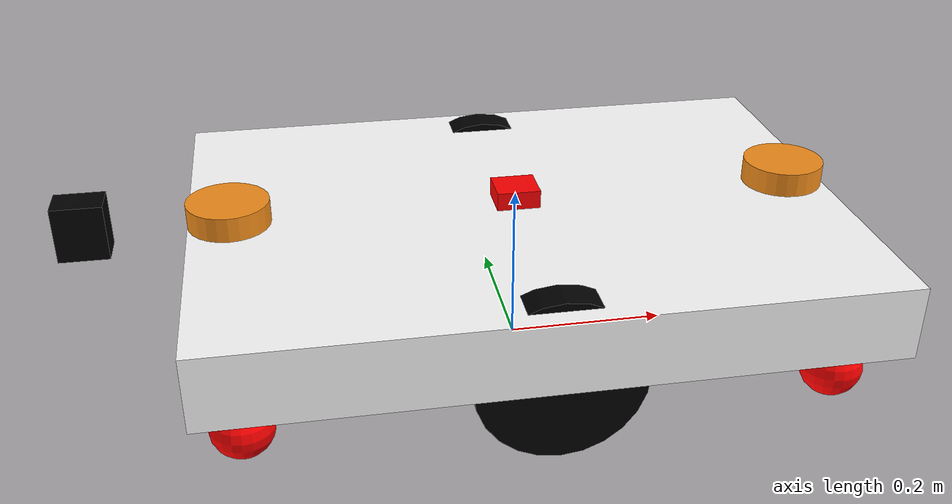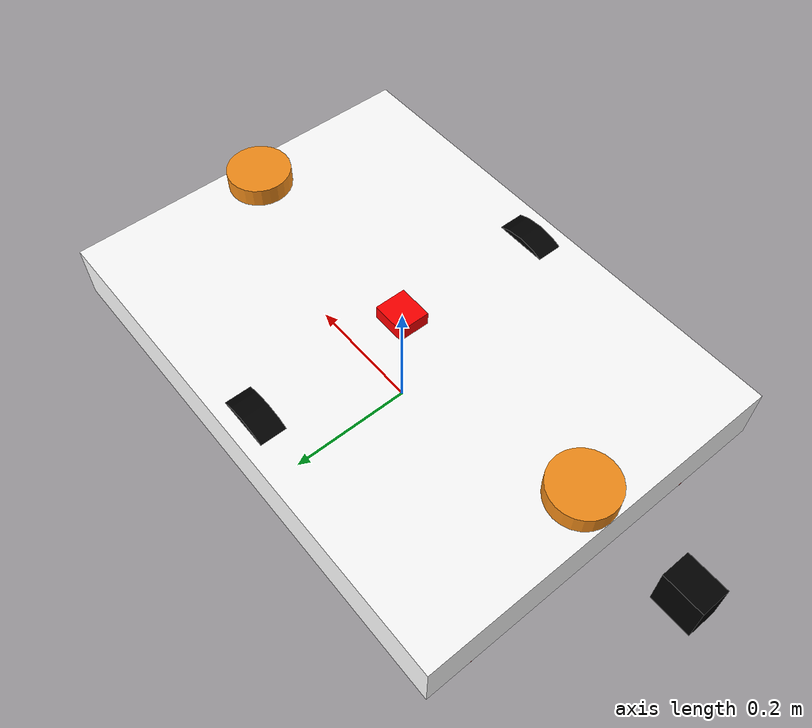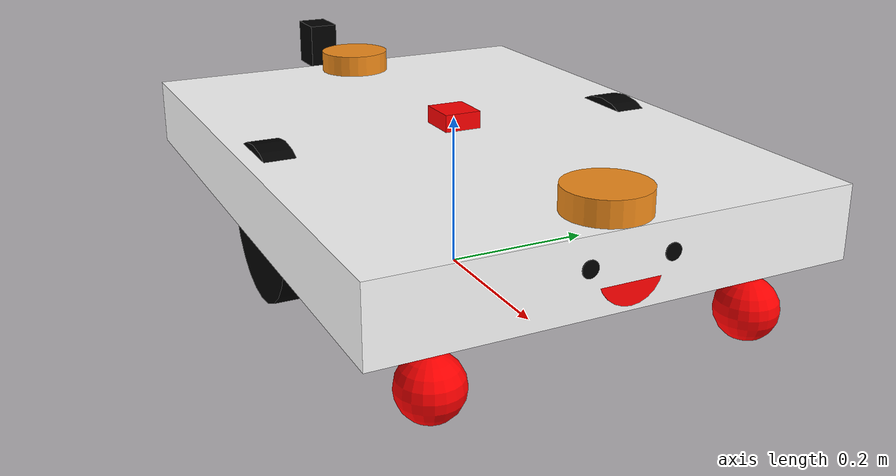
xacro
<?xml version="1.0"?>
<robot xmlns:xacro="http://www.ros.org/wiki/xacro"  name="robot">

    <xacro:arg name="sim_mode" default="false"/>

    <xacro:include filename="robot_core.xacro" />

    <!-- Simulation: use Gazebo diff-drive control plugin -->
    <xacro:if value="$(arg sim_mode)">
        <xacro:include filename="gazebo_control.xacro" />
    </xacro:if>
    <!-- Real hardware: use ros2_control with Kinco hardware interface -->
    <xacro:unless value="$(arg sim_mode)">
        <xacro:include filename="ros2_control.xacro" />
    </xacro:unless>

    <xacro:include filename="lidar.xacro" />
    <xacro:include filename="pgv.xacro" />

    <xacro:include filename="face.xacro" />

</robot>

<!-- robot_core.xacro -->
<robot xmlns:xacro="http://www.ros.org/wiki/xacro" >

    <xacro:include filename="inertial_macros.xacro"/>

    <xacro:property name="chassis_length" value="0.80"/>
    <xacro:property name="chassis_width" value="0.58"/>
    <xacro:property name="chassis_height" value="0.09"/>
    <xacro:property name="chassis_mass" value="40.0"/>
    <xacro:property name="wheel_radius" value="0.1"/>
    <xacro:property name="wheel_thickness" value="0.04"/>
    <xacro:property name="wheel_mass" value="1.5"/>
    <xacro:property name="wheel_offset_x" value="0.40"/>
    <xacro:property name="wheel_offset_y" value="0.2475"/>

    <xacro:property name="caster_wheel_radius" value="0.038"/>
    <xacro:property name="caster_wheel_mass" value="0.4"/>
    <xacro:property name="caster_z_offset" value="-0.062"/>

    <material name="white"><color rgba="1 1 1 1" /></material>
    <material name="black"><color rgba="0 0 0 1"/></material>
    <material name="red"><color rgba="1 0 0 1"/></material>

    <link name="base_footprint"/>

    <joint name="base_footprint_joint" type="fixed">
        <parent link="base_footprint"/>
        <child link="base_link"/>
        <origin xyz="0 0 ${wheel_radius}" rpy="0 0 0"/>
    </joint>

    <link name="base_link">
        <visual>
            <origin xyz="${(chassis_length/2) - wheel_offset_x} 0 ${chassis_height/2}"/>
            <geometry>
                <box size="${chassis_length} ${chassis_width} ${chassis_height}"/>
            </geometry>
            <material name="white"/>
        </visual>
        <collision>
            <origin xyz="${(chassis_length/2) - wheel_offset_x} 0 ${chassis_height/2}"/>
            <geometry>
                <box size="${chassis_length} ${chassis_width} ${chassis_height}"/>
            </geometry>
        </collision>
        <xacro:inertial_box mass="${chassis_mass}" x="${chassis_length}" y="${chassis_width}" z="${chassis_height}">
            <origin xyz="${(chassis_length/2) - wheel_offset_x} 0 ${chassis_height/2}" rpy="0 0 0"/>
        </xacro:inertial_box>
    </link>

    <gazebo reference="base_link">
        <material>Gazebo/White</material>
    </gazebo>

    <joint name="left_wheel_joint" type="continuous">
        <parent link="base_link"/>
        <child link="left_wheel"/>
        <origin xyz="0 ${wheel_offset_y} 0" rpy="-${pi/2} 0 0" />
        <axis xyz="0 0 1"/>
    </joint>

    <link name="left_wheel">
        <visual>
            <geometry><cylinder radius="${wheel_radius}" length="${wheel_thickness}"/></geometry>
            <material name="black"/>
        </visual>
        <collision>
            <geometry><sphere radius="${wheel_radius}"/></geometry>
        </collision>
        <xacro:inertial_cylinder mass="${wheel_mass}" length="${wheel_thickness}" radius="${wheel_radius}">
            <origin xyz="0 0 0" rpy="0 0 0"/>
        </xacro:inertial_cylinder>
    </link>

    <joint name="right_wheel_joint" type="continuous">
        <parent link="base_link"/>
        <child link="right_wheel"/>
        <origin xyz="0 ${-wheel_offset_y} 0" rpy="${pi/2} 0 0" />
        <axis xyz="0 0 -1"/>
    </joint>

    <link name="right_wheel">
        <visual>
            <geometry><cylinder radius="${wheel_radius}" length="${wheel_thickness}"/></geometry>
            <material name="black"/>
        </visual>
        <collision>
            <geometry><sphere radius="${wheel_radius}"/></geometry>
        </collision>
        <xacro:inertial_cylinder mass="${wheel_mass}" length="${wheel_thickness}" radius="${wheel_radius}">
            <origin xyz="0 0 0" rpy="0 0 0"/>
        </xacro:inertial_cylinder>
    </link>

    <joint name="caster_front_left_joint" type="fixed">
        <parent link="base_link"/>
        <child link="caster_front_left"/>
        <origin xyz="${0.75 - wheel_offset_x} 0.20 ${caster_z_offset}"/>
    </joint>
    <link name="caster_front_left">
        <visual>
            <geometry><sphere radius="${caster_wheel_radius}"/></geometry>
            <material name="red"/>
        </visual>
        <collision>
            <geometry><sphere radius="${caster_wheel_radius}"/></geometry>
        </collision>
        <xacro:inertial_sphere mass="${caster_wheel_mass}" radius="${caster_wheel_radius}">
            <origin xyz="0 0 0" rpy="0 0 0"/>
        </xacro:inertial_sphere>
    </link>

    <joint name="caster_front_right_joint" type="fixed">
        <parent link="base_link"/>
        <child link="caster_front_right"/>
        <origin xyz="${0.75 - wheel_offset_x} -0.20 ${caster_z_offset}"/>
    </joint>
    <link name="caster_front_right">
        <visual>
            <geometry><sphere radius="${caster_wheel_radius}"/></geometry>
            <material name="red"/>
        </visual>
        <collision>
            <geometry><sphere radius="${caster_wheel_radius}"/></geometry>
        </collision>
        <xacro:inertial_sphere mass="${caster_wheel_mass}" radius="${caster_wheel_radius}">
            <origin xyz="0 0 0" rpy="0 0 0"/>
        </xacro:inertial_sphere>
    </link>

    <joint name="caster_rear_left_joint" type="fixed">
        <parent link="base_link"/>
        <child link="caster_rear_left"/>
        <origin xyz="${0.05 - wheel_offset_x} 0.20 ${caster_z_offset}"/>
    </joint>
    <link name="caster_rear_left">
        <visual>
            <geometry><sphere radius="${caster_wheel_radius}"/></geometry>
            <material name="red"/>
        </visual>
        <collision>
            <geometry><sphere radius="${caster_wheel_radius}"/></geometry>
        </collision>
        <xacro:inertial_sphere mass="${caster_wheel_mass}" radius="${caster_wheel_radius}">
            <origin xyz="0 0 0" rpy="0 0 0"/>
        </xacro:inertial_sphere>
    </link>

    <joint name="caster_rear_right_joint" type="fixed">
        <parent link="base_link"/>
        <child link="caster_rear_right"/>
        <origin xyz="${0.05 - wheel_offset_x} -0.20 ${caster_z_offset}"/>
    </joint>
    <link name="caster_rear_right">
        <visual>
            <geometry><sphere radius="${caster_wheel_radius}"/></geometry>
            <material name="red"/>
        </visual>
        <collision>
            <geometry><sphere radius="${caster_wheel_radius}"/></geometry>
        </collision>
        <xacro:inertial_sphere mass="${caster_wheel_mass}" radius="${caster_wheel_radius}">
            <origin xyz="0 0 0" rpy="0 0 0"/>
        </xacro:inertial_sphere>
    </link>

    <joint name="imu_joint" type="fixed">
        <parent link="base_link"/>
        <child link="imu_link"/>
        <origin xyz="${0.4 - wheel_offset_x} 0 0.10" rpy="0 0 0"/>
    </joint>

    <link name="imu_link">
        <visual>
            <geometry><box size="0.0538 0.0488 0.0252"/></geometry>
            <material name="red"/>
        </visual>
        <collision>
            <geometry><box size="0.0538 0.0488 0.0252"/></geometry>
        </collision>
        <inertial>
            <mass value="0.01"/>
            <origin xyz="0 0 0" rpy="0 0 0"/>
            <inertia ixx="0.0001" ixy="0" ixz="0" iyy="0.0001" iyz="0" izz="0.0001"/>
        </inertial>
    </link>

</robot>

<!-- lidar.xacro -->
<robot xmlns:xacro="http://www.ros.org/wiki/xacro">

  <xacro:include filename="inertial_macros.xacro"/>

  <!-- Pi = 3.14159 -->

  <joint name="laser_front_joint" type="fixed">
    <parent link="base_link"/>
    <child link="laser_front_frame"/>
    <origin xyz="0.35 0 0.10" rpy="0 0 0"/>
  </joint>

  <link name="laser_front_frame">
    <visual>
      <geometry>
        <cylinder radius="0.05" length="0.04"/>
      </geometry>
      <material name="orange"/>
    </visual>

    <visual>
      <origin xyz="0 0 -0.05"/>
      <geometry>
        <cylinder radius="0.01" length="0.1"/>
      </geometry>
      <material name="orange"/>
    </visual>

    <collision>
      <geometry>
        <cylinder radius="0.05" length="0.04"/>
      </geometry>
    </collision>

    <xacro:inertial_cylinder mass="0.1" length="0.04" radius="0.05">
      <origin xyz="0 0 0" rpy="0 0 0"/>
    </xacro:inertial_cylinder>
  </link>

  <joint name="laser_rear_joint" type="fixed">
    <parent link="base_link"/>
    <child link="laser_rear_frame"/>
    <origin xyz="-0.35 0 0.10" rpy="0 0 3.14159"/>
  </joint>

  <link name="laser_rear_frame">
    <visual>
      <geometry>
        <cylinder radius="0.05" length="0.04"/>
      </geometry>
      <material name="orange"/>
    </visual>

    <visual>
      <origin xyz="0 0 -0.05"/>
      <geometry>
        <cylinder radius="0.01" length="0.1"/>
      </geometry>
      <material name="orange"/>
    </visual>

    <collision>
      <geometry>
        <cylinder radius="0.05" length="0.04"/>
      </geometry>
    </collision>

    <xacro:inertial_cylinder mass="0.1" length="0.04" radius="0.05">
      <origin xyz="0 0 0" rpy="0 0 0"/>
    </xacro:inertial_cylinder>
  </link>

  <gazebo reference="laser_front_frame">
    <material>Gazebo/Black</material>

    <sensor name="laser" type="ray">
      <pose>0 0 0 0 0 3.14</pose>
      <visualize>true</visualize>
      <update_rate>10</update_rate>

      <ray>
        <scan>
          <horizontal>
            <samples>180</samples>
            <min_angle>-1.57</min_angle>
            <max_angle>1.57</max_angle>
          </horizontal>
        </scan>

        <range>
          <min>0.3</min>
          <max>12</max>
        </range>
      </ray>

      <plugin name="laser_controller" filename="libgazebo_ros_ray_sensor.so">
        <ros>
          <argument>~/out:=scan</argument>
        </ros>
        <output_type>sensor_msgs/LaserScan</output_type>
        <frame_name>laser_front_frame</frame_name>
      </plugin>
    </sensor>
  </gazebo>

  <gazebo reference="laser_rear_frame">
    <material>Gazebo/Black</material>

    <sensor name="laser_rear" type="ray">
      <pose>0 0 0 0 0 0</pose>
      <visualize>true</visualize>
      <update_rate>10</update_rate>

      <ray>
        <scan>
          <horizontal>
            <samples>180</samples>
            <min_angle>-1.57</min_angle>
            <max_angle>1.57</max_angle>
          </horizontal>
        </scan>

        <range>
          <min>0.3</min>
          <max>12</max>
        </range>
      </ray>

      <plugin name="laser_controller_rear" filename="libgazebo_ros_ray_sensor.so">
        <ros>
          <argument>~/out:=scan2</argument>
        </ros>
        <output_type>sensor_msgs/LaserScan</output_type>
        <frame_name>laser_rear_frame</frame_name>
      </plugin>
    </sensor>
  </gazebo>

</robot>

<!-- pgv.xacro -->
<robot xmlns:xacro="http://www.ros.org/wiki/xacro">

  <xacro:property name="pgv_x_offset" value="${-(chassis_length / 2.0) - 0.12}"/>
  <joint name="base_link_to_pgv_link" type="fixed">
    <parent link="base_link"/>
    <child link="pgv_link"/>
    <origin xyz="${pgv_x_offset} 0 0.10" rpy="0 0 0"/>
  </joint>

  <link name="pgv_link">
    <visual>
      <geometry>
        <box size="0.060 0.043 0.068"/>
      </geometry>
      <material name="black"/>
    </visual>
    <collision>
      <geometry>
        <box size="0.060 0.043 0.068"/>
      </geometry>
    </collision>
  </link>

</robot>

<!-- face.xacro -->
<robot xmlns:xacro="http://www.ros.org/wiki/xacro" >

    <joint name="face_joint" type="fixed">
        <parent link="base_link"/>
        <child link="face_link"/>
        <origin xyz="${chassis_length/2} 0 ${chassis_height/2}" rpy="0 0 0"/>
    </joint>

    <link name="face_link">
        <visual>
            <origin xyz="0 0.05 0.01" rpy="0 ${pi/2} 0"/>
            <geometry>
                <cylinder radius="0.01" length="0.002"/>
            </geometry>
            <material name="black"/>
        </visual>

        <visual>
            <origin xyz="0 -0.05 0.01" rpy="0 ${pi/2} 0"/>
            <geometry>
                <cylinder radius="0.01" length="0.002"/>
            </geometry>
            <material name="black"/>
        </visual>

        <visual>
            <origin xyz="-0.011 0 -0.00" rpy="0 ${1.5} 0"/>
            <geometry>
                <cylinder radius="0.04" length="0.02"/>
            </geometry>
            <material name="red"/>
        </visual>
    </link>

    <gazebo reference="face_link">
        <material>Gazebo/Black</material>
    </gazebo>

</robot>
